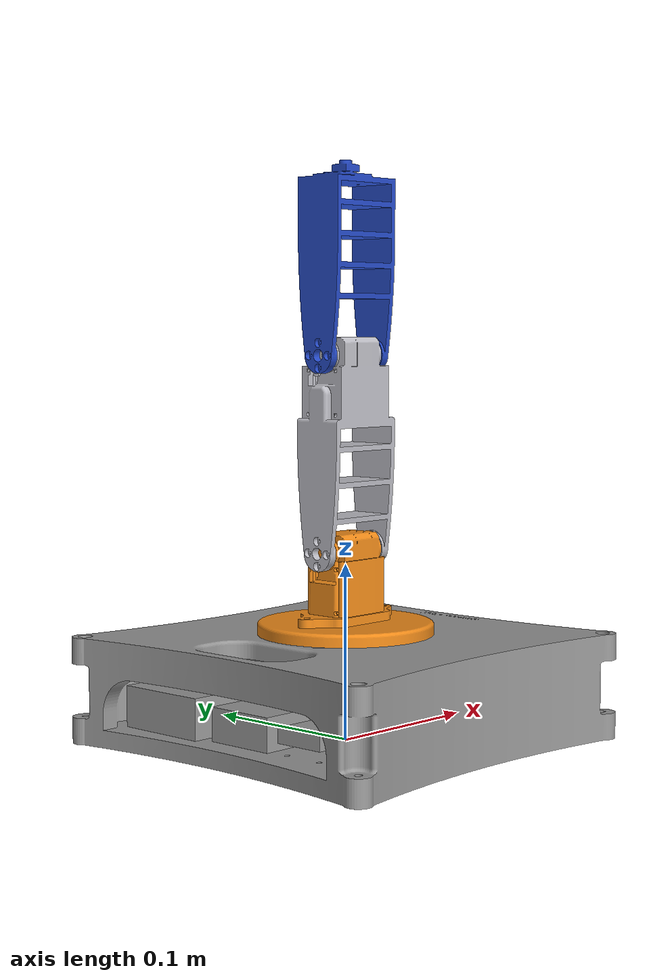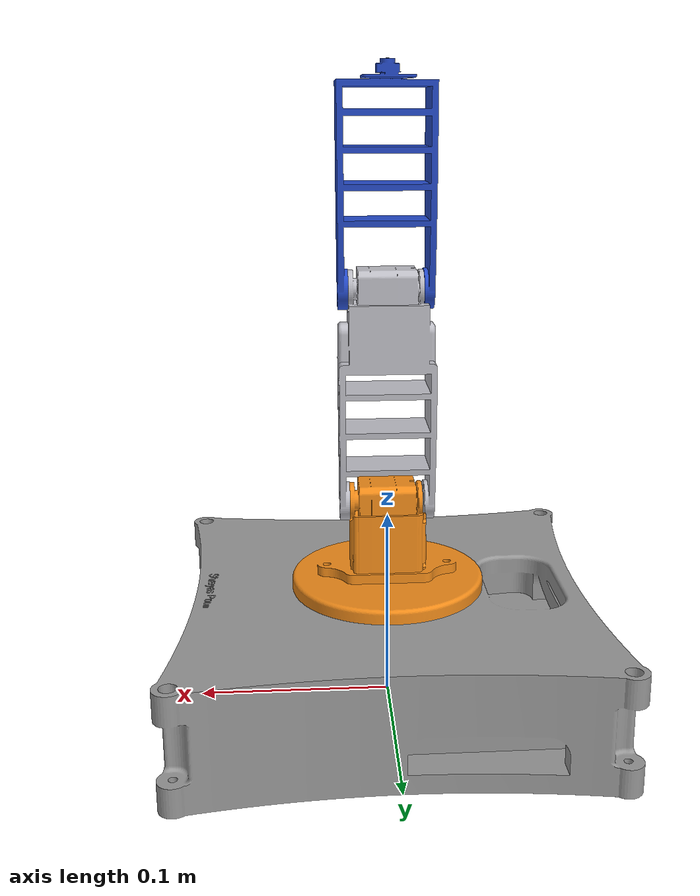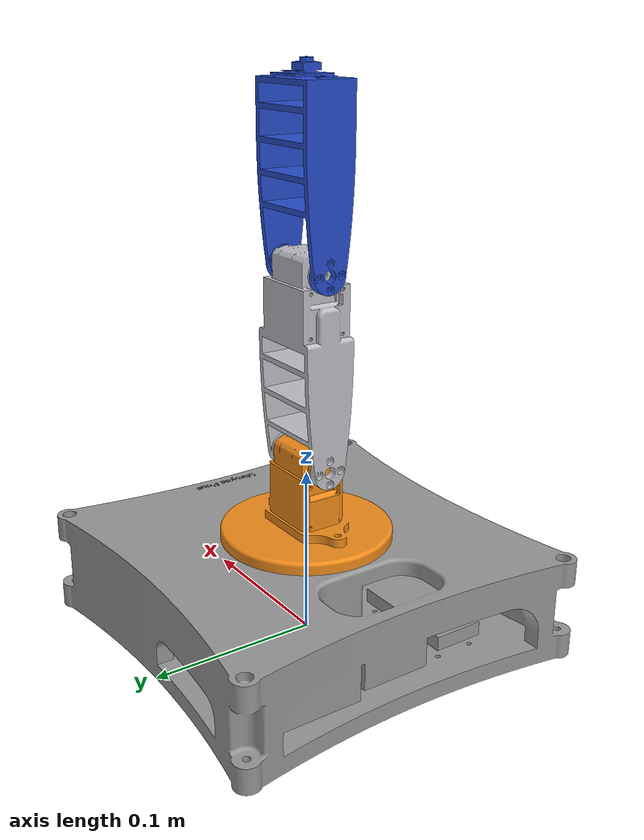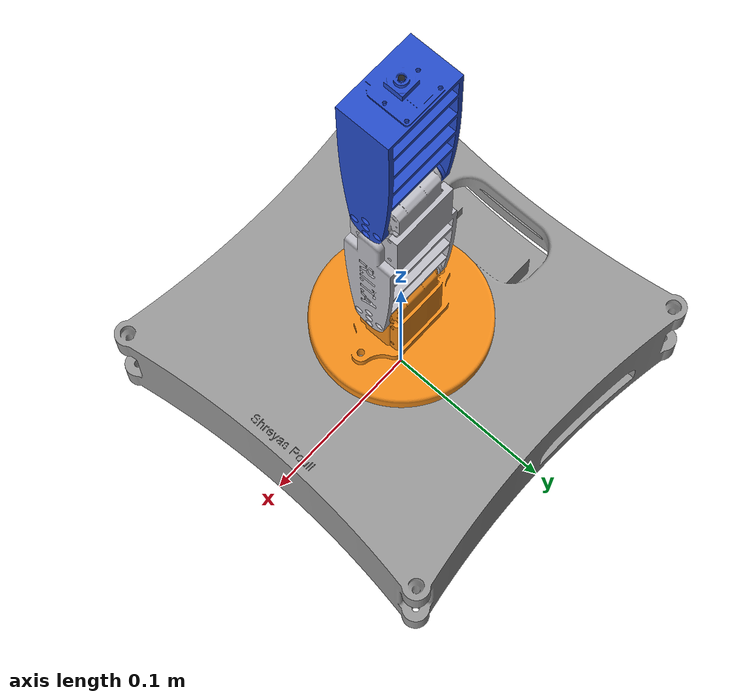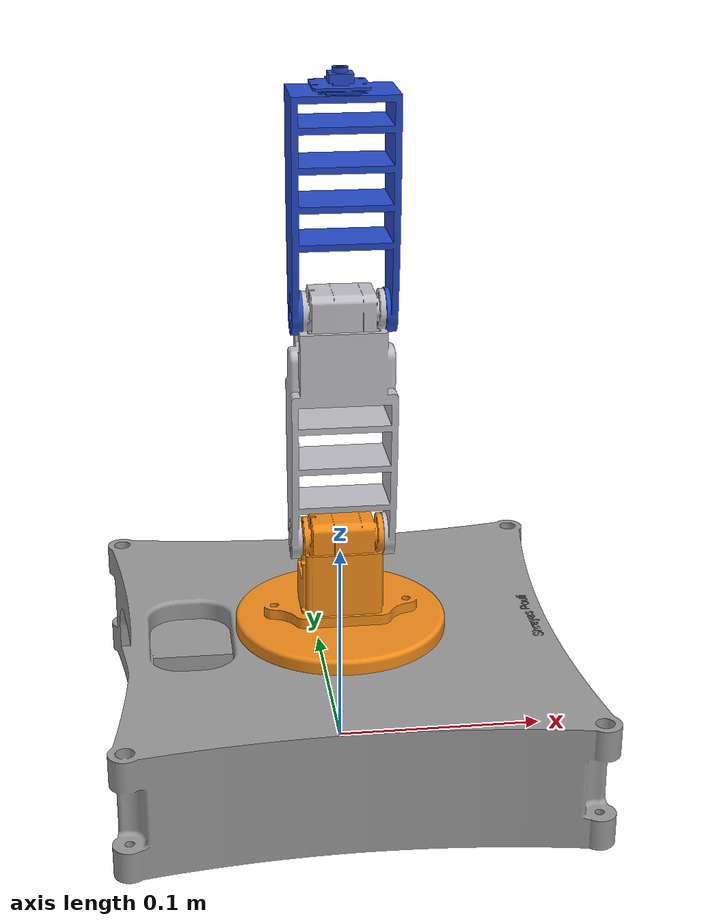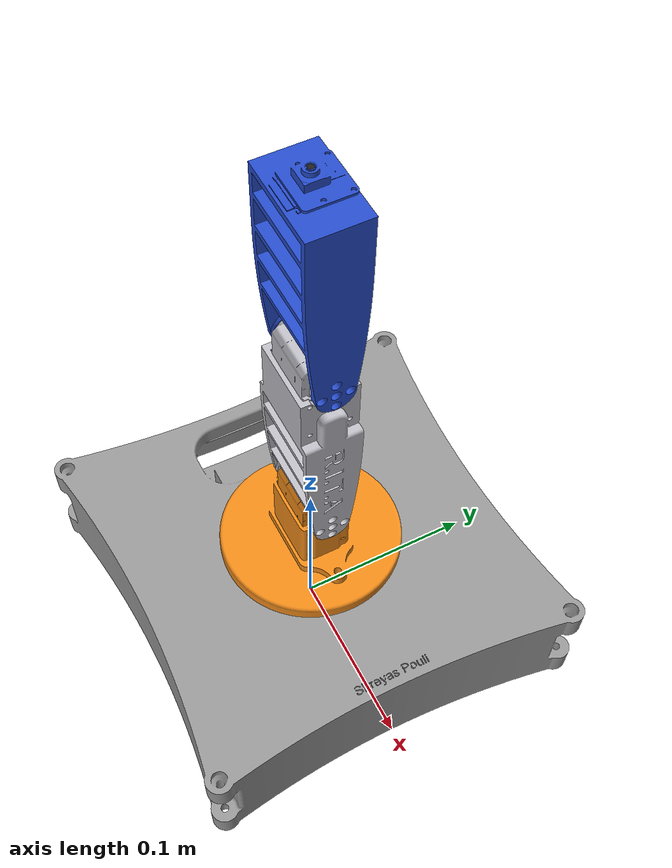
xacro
<?xml version="1.0"?>
<robot xmlns:xacro="http://www.ros.org/wiki/xacro" name="RITA">
    <xacro:arg name="initial_positions_file" default="initial_positions.yaml" />

    <xacro:arg name="use_gazebo" default="false" />

    <xacro:include filename="$(find rita_description)/urdf/rita.urdf" />

    <xacro:include filename="RITA.ros2_control.xacro" />

    <xacro:RITA_ros2_control name="FakeSystem" initial_positions_file="$(arg initial_positions_file)" use_gazebo="$(arg use_gazebo)"/>
</robot>

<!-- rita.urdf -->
<robot name="RITA">

    <link name="world" />
    <joint name="world_to_base" type="fixed">
        <parent link="world" />
        <child link="base" />
    </joint>

    <link name="base">
        <inertial>
            <origin xyz="-0.0010387734031772821 0.0032887788583607904 0.029061382994366745" rpy="0.0 0.0 0.0" />
            <mass value="1.3807206259037155" />
            <inertia ixx="0.006361863192708521" iyy="0.006072673603725494" izz="0.011180227078648387" ixy="0.0002134397843264139" iyz="2.921107855617803e-05" ixz="-8.29421350332098e-05" />
        </inertial>
        <visual name="base_visual">
            <origin xyz="0.0 0.0 0.0" rpy="0.0 0.0 0.0" />
            <geometry>
                <mesh filename="package://rita_description/meshes/base.stl" scale="0.001 0.001 0.001" />
            </geometry>
        </visual>
        <collision name="base_collision">
            <origin xyz="0.0 0.0 0.0" rpy="0.0 0.0 0.0" />
            <geometry>
                <mesh filename="package://rita_description/meshes/base.stl" scale="0.001 0.001 0.001" />
            </geometry>
        </collision>
    </link>
    <link name="link_2">
        <inertial>
            <origin xyz="0.00045615534764991176 1.7605326975346875e-06 0.028727326520499332" rpy="0.0 -0.0 0.0" />
            <mass value="0.13119686671649705" />
            <inertia ixx="8.026019881573359e-05" iyy="8.440245819876812e-05" izz="8.423074716730033e-05" ixy="2.4951187323767607e-09" iyz="-8.095948235126802e-10" ixz="-8.347656813512836e-07" />
        </inertial>
        <visual name="link_2_visual">
            <origin xyz="3.774758283725532e-16 -2.182975978891114e-16 -0.052000000000000705" rpy="0.0 -0.0 0.0" />
            <geometry>
                <mesh filename="package://rita_description/meshes/link_2.stl" scale="0.001 0.001 0.001" />
            </geometry>
        </visual>
        <collision name="link_2_collision">
            <origin xyz="3.774758283725532e-16 -2.182975978891114e-16 -0.052000000000000705" rpy="0.0 -0.0 0.0" />
            <geometry>
                <mesh filename="package://rita_description/meshes/link_2.stl" scale="0.001 0.001 0.001" />
            </geometry>
        </collision>
    </link>
    <link name="link_3">
        <inertial>
            <origin xyz="0.08018228279440866 -5.69748474494465e-06 -0.018908311465050058" rpy="0.0 -0.0 0.0" />
            <mass value="0.10291815116636557" />
            <inertia ixx="2.4015662854688252e-05" iyy="0.00010515449575152543" izz="9.37759946723557e-05" ixy="-5.279686960063304e-10" iyz="-2.4860078537116834e-09" ixz="-2.9339308574815776e-07" />
        </inertial>
        <visual name="link_3_visual">
            <origin xyz="-0.10855585000000074 2.170599590232697e-16 -0.019699784117529456" rpy="-3.141592653589793 -1.5707963267948966 0" />
            <geometry>
                <mesh filename="package://rita_description/meshes/link_3.stl" scale="0.001 0.001 0.001" />
            </geometry>
        </visual>
        <collision name="link_3_collision">
            <origin xyz="-0.10855585000000074 2.170599590232697e-16 -0.019699784117529456" rpy="-3.141592653589793 -1.5707963267948966 0" />
            <geometry>
                <mesh filename="package://rita_description/meshes/link_3.stl" scale="0.001 0.001 0.001" />
            </geometry>
        </collision>
    </link>
    <link name="link_4">
        <inertial>
            <origin xyz="0.05907679536014832 1.3241284199791243e-05 -0.018603339791167257" rpy="0.0 -0.0 0.0" />
            <mass value="0.0395172357706273" />
            <inertia ixx="1.444674707735672e-05" iyy="4.54457446293537e-05" izz="3.623134838273787e-05" ixy="-2.0959854557372372e-08" iyz="3.895204094697039e-10" ixz="2.263440457663169e-07" />
        </inertial>
        <visual name="link_4_visual">
            <origin xyz="-0.21855585000000072 2.206235122520802e-16 -0.019700004117528848" rpy="-3.141592653589793 -1.5707963267948966 0" />
            <geometry>
                <mesh filename="package://rita_description/meshes/link_4.stl" scale="0.001 0.001 0.001" />
            </geometry>
        </visual>
        <collision name="link_4_collision">
            <origin xyz="-0.21855585000000072 2.206235122520802e-16 -0.019700004117528848" rpy="-3.141592653589793 -1.5707963267948966 0" />
            <geometry>
                <mesh filename="package://rita_description/meshes/link_4.stl" scale="0.001 0.001 0.001" />
            </geometry>
        </collision>
    </link>
    <link name="camera">
        <inertial>
            <origin xyz="-4.11752881039352e-09 -1.0321395147290178e-16 8.506853132963954e-05" rpy="0.0 -0.0 0.0" />
            <mass value="6.940939469065224e-06" />
            <inertia ixx="2.579124855976622e-12" iyy="2.579124855976622e-12" izz="5.106205024741313e-12" ixy="-5.478947916019398e-25" iyz="-3.0079291127978885e-24" ixz="-3.735136479363897e-24" />
        </inertial>
        <visual name="camera_visual">
            <origin xyz="-4.11752884932539e-09 -2.2062269910045085e-16 -0.3262500000000007" rpy="0.0 -0.0 0.0" />
            <geometry>
                <mesh filename="package://rita_description/meshes/camera.stl" scale="0.001 0.001 0.001" />
            </geometry>
        </visual>
        <collision name="camera_collision">
            <origin xyz="-4.11752884932539e-09 -2.2062269910045085e-16 -0.3262500000000007" rpy="0.0 -0.0 0.0" />
            <geometry>
                <mesh filename="package://rita_description/meshes/camera.stl" scale="0.001 0.001 0.001" />
            </geometry>
        </collision>
    </link>

    <joint name="base_Revolute-1" type="revolute">
        <origin xyz="0.0 0.0 0.0517" rpy="0.0 -0.0 0.0" />
        <parent link="base" />
        <child link="link_2" />
        <axis xyz="0.0 0.0 1.0" />
        <limit lower="-3" upper="3" effort="2.94" velocity="11.1"/>
    </joint>
    <joint name="link_2_Revolute-2" type="revolute">
        <origin xyz="0.0197 0.0 0.056555850000000005" rpy="-3.141592653589793 -1.5707963267948966 0" />
        <parent link="link_2" />
        <child link="link_3" />
        <axis xyz="0.0 0.0 1.0" />
        <limit lower="-1.57" upper="1.57" effort="1.47" velocity="11.1"/>
    </joint>
    <joint name="link_3_Revolute-3" type="revolute">
        <origin xyz="0.11 0.0 2.199999999996649e-07" rpy="0.0 -0.0 0.0" />
        <parent link="link_3" />
        <child link="link_4" />
        <axis xyz="0.0 0.0 1.0" />
        <limit lower="-2.09" upper="2.09" effort="2.94" velocity="11.1"/>
    </joint>
    <joint name="link_4_Rigid-4" type="fixed">
        <origin xyz="0.10794414999999997 0.0 -0.0197" rpy="-3.141592653589793 -1.5707963267948966 0" />
        <parent link="link_4" />
        <child link="camera" />
    </joint>

    <gazebo reference="base">
        <material>Gazebo/Grey</material>
    </gazebo>
    <gazebo reference="link_2">
        <material>Gazebo/Orange</material>
    </gazebo>
    <gazebo reference="link_3">
        <material>Gazebo/Silver</material>
    </gazebo>
    <gazebo reference="link_4">
        <material>Gazebo/Blue</material>
    </gazebo>
    <gazebo reference="camera">
        <material>Gazebo/Black</material>
    </gazebo>

<gazebo reference="camera">
        <sensor name="pi_camera" type="camera">
            <pose>0 0 0 1.5708 -1.5708 0</pose>
            <always_on>true</always_on>
            <update_rate>30.0</update_rate>
            <camera name="pi_camera">
                <horizontal_fov>1.309</horizontal_fov>
                <image><width>1920</width><height>1080</height><format>R8G8B8</format></image>
                <clip><near>0.1</near><far>100</far></clip>
            </camera>
            <topic>/camera/image_raw</topic>
            <gz_frame_id>camera</gz_frame_id>
        </sensor>
    </gazebo>

</robot>
